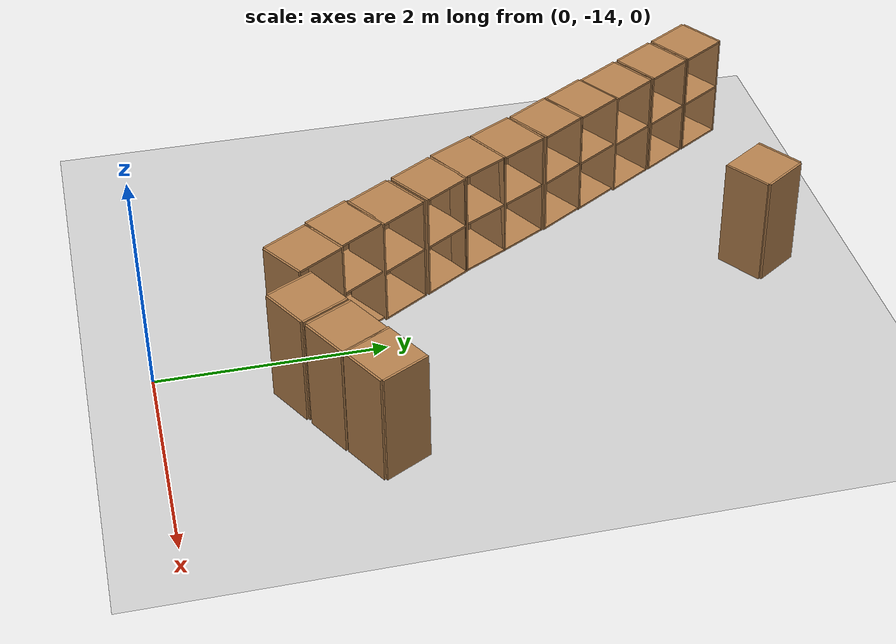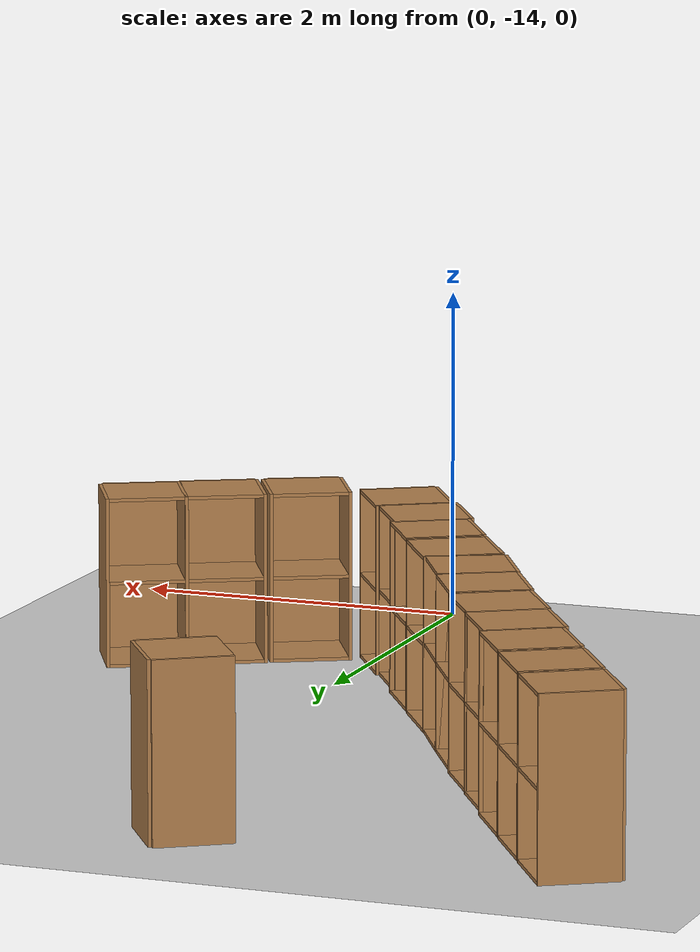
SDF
<sdf version="1.6">
 <world name="default">
  <model name="ground_plane">
   <static>1</static>
   <link name="link">
    <collision name="collision">
     <geometry><plane><normal>0 0 1</normal><size>100 100</size></plane></geometry>
     <surface><friction><ode><mu>100</mu><mu2>50</mu2></ode></friction></surface>
    </collision>
    <visual name="visual">
     <cast_shadows>0</cast_shadows>
     <geometry><plane><normal>0 0 1</normal><size>100 100</size></plane></geometry>
     <material>
      <script><uri>file://media/materials/scripts/gazebo.material</uri><name>Gazebo/Grey</name></script>
     </material>
    </visual>
   </link>
  </model>
  <model name="cabinet">
   <static>1</static>
   <link name="cabinet_bottom_plate">
    <inertial>
     <pose>0 0 -1 0 -0 0</pose>
     <inertia><ixx>2.05</ixx><ixy>0</ixy><ixz>0</ixz><iyy>2.05</iyy><iyz>0</iyz><izz>2.05</izz></inertia>
     <mass>25</mass>
    </inertial>
    <collision name="cabinet_bottom_plate_geom">
     <pose>0 0 0.01 0 -0 0</pose>
     <geometry><box><size>0.45 0.45 0.02</size></box></geometry>
    </collision>
    <visual name="cabinet_bottom_plate_geom_visual">
     <pose>0 0 0.01 0 -0 0</pose>
     <geometry><box><size>0.45 0.45 0.02</size></box></geometry>
     <material>
      <script><uri>file://media/materials/scripts/gazebo.material</uri><name>Gazebo/Wood</name></script>
     </material>
    </visual>
    <collision name="cabinet_bottom_plate_geom_cabinet_back_plate">
     <pose>0.235 0 0.51 0 -0 0</pose>
     <geometry><box><size>0.02 0.45 1.02</size></box></geometry>
    </collision>
    <visual name="cabinet_bottom_plate_geom_cabinet_back_plate_visual">
     <pose>0.235 0 0.51 0 -0 0</pose>
     <geometry><box><size>0.02 0.45 1.02</size></box></geometry>
     <material>
      <script><uri>file://media/materials/scripts/gazebo.material</uri><name>Gazebo/Wood</name></script>
     </material>
    </visual>
    <collision name="cabinet_bottom_plate_geom_cabinet_left_plate">
     <pose>0 0.235 0.51 0 -0 0</pose>
     <geometry><box><size>0.45 0.02 1.02</size></box></geometry>
    </collision>
    <visual name="cabinet_bottom_plate_geom_cabinet_left_plate_visual">
     <pose>0 0.235 0.51 0 -0 0</pose>
     <geometry><box><size>0.45 0.02 1.02</size></box></geometry>
     <material>
      <script><uri>file://media/materials/scripts/gazebo.material</uri><name>Gazebo/Wood</name></script>
     </material>
    </visual>
    <collision name="cabinet_bottom_plate_geom_cabinet_middle_plate">
     <pose>0 0 0.51 0 -0 0</pose>
     <geometry><box><size>0.45 0.45 0.02</size></box></geometry>
    </collision>
    <visual name="cabinet_bottom_plate_geom_cabinet_middle_plate_visual">
     <pose>0 0 0.51 0 -0 0</pose>
     <geometry><box><size>0.45 0.45 0.02</size></box></geometry>
     <material>
      <script><uri>file://media/materials/scripts/gazebo.material</uri><name>Gazebo/Wood</name></script>
     </material>
    </visual>
    <collision name="cabinet_bottom_plate_geom_cabinet_right_plate">
     <pose>0 -0.235 0.51 0 -0 0</pose>
     <geometry><box><size>0.45 0.02 1.02</size></box></geometry>
    </collision>
    <visual name="cabinet_bottom_plate_geom_cabinet_right_plate_visual">
     <pose>0 -0.235 0.51 0 -0 0</pose>
     <geometry><box><size>0.45 0.02 1.02</size></box></geometry>
     <material>
      <script><uri>file://media/materials/scripts/gazebo.material</uri><name>Gazebo/Wood</name></script>
     </material>
    </visual>
    <collision name="cabinet_bottom_plate_geom_cabinet_top_plate">
     <pose>0 0 1.01 0 -0 0</pose>
     <geometry><box><size>0.45 0.45 0.02</size></box></geometry>
    </collision>
    <visual name="cabinet_bottom_plate_geom_cabinet_top_plate_visual">
     <pose>0 0 1.01 0 -0 0</pose>
     <geometry><box><size>0.45 0.45 0.02</size></box></geometry>
     <material>
      <script><uri>file://media/materials/scripts/gazebo.material</uri><name>Gazebo/Wood</name></script>
     </material>
    </visual>
   </link>
   <pose>-1.66751 -10.1828 0 0 0 -2.58006</pose>
  </model>
  <model name="cabinet_clone">
   <static>1</static>
   <link name="cabinet_bottom_plate">
    <inertial>
     <pose>0 0 -1 0 -0 0</pose>
     <inertia><ixx>2.05</ixx><ixy>0</ixy><ixz>0</ixz><iyy>2.05</iyy><iyz>0</iyz><izz>2.05</izz></inertia>
     <mass>25</mass>
    </inertial>
    <collision name="cabinet_bottom_plate_geom">
     <pose>0 0 0.01 0 -0 0</pose>
     <geometry><box><size>0.45 0.45 0.02</size></box></geometry>
    </collision>
    <visual name="cabinet_bottom_plate_geom_visual">
     <pose>0 0 0.01 0 -0 0</pose>
     <geometry><box><size>0.45 0.45 0.02</size></box></geometry>
     <material>
      <script><uri>file://media/materials/scripts/gazebo.material</uri><name>Gazebo/Wood</name></script>
     </material>
    </visual>
    <collision name="cabinet_bottom_plate_geom_cabinet_back_plate">
     <pose>0.235 0 0.51 0 -0 0</pose>
     <geometry><box><size>0.02 0.45 1.02</size></box></geometry>
    </collision>
    <visual name="cabinet_bottom_plate_geom_cabinet_back_plate_visual">
     <pose>0.235 0 0.51 0 -0 0</pose>
     <geometry><box><size>0.02 0.45 1.02</size></box></geometry>
     <material>
      <script><uri>file://media/materials/scripts/gazebo.material</uri><name>Gazebo/Wood</name></script>
     </material>
    </visual>
    <collision name="cabinet_bottom_plate_geom_cabinet_left_plate">
     <pose>0 0.235 0.51 0 -0 0</pose>
     <geometry><box><size>0.45 0.02 1.02</size></box></geometry>
    </collision>
    <visual name="cabinet_bottom_plate_geom_cabinet_left_plate_visual">
     <pose>0 0.235 0.51 0 -0 0</pose>
     <geometry><box><size>0.45 0.02 1.02</size></box></geometry>
     <material>
      <script><uri>file://media/materials/scripts/gazebo.material</uri><name>Gazebo/Wood</name></script>
     </material>
    </visual>
    <collision name="cabinet_bottom_plate_geom_cabinet_middle_plate">
     <pose>0 0 0.51 0 -0 0</pose>
     <geometry><box><size>0.45 0.45 0.02</size></box></geometry>
    </collision>
    <visual name="cabinet_bottom_plate_geom_cabinet_middle_plate_visual">
     <pose>0 0 0.51 0 -0 0</pose>
     <geometry><box><size>0.45 0.45 0.02</size></box></geometry>
     <material>
      <script><uri>file://media/materials/scripts/gazebo.material</uri><name>Gazebo/Wood</name></script>
     </material>
    </visual>
    <collision name="cabinet_bottom_plate_geom_cabinet_right_plate">
     <pose>0 -0.235 0.51 0 -0 0</pose>
     <geometry><box><size>0.45 0.02 1.02</size></box></geometry>
    </collision>
    <visual name="cabinet_bottom_plate_geom_cabinet_right_plate_visual">
     <pose>0 -0.235 0.51 0 -0 0</pose>
     <geometry><box><size>0.45 0.02 1.02</size></box></geometry>
     <material>
      <script><uri>file://media/materials/scripts/gazebo.material</uri><name>Gazebo/Wood</name></script>
     </material>
    </visual>
    <collision name="cabinet_bottom_plate_geom_cabinet_top_plate">
     <pose>0 0 1.01 0 -0 0</pose>
     <geometry><box><size>0.45 0.45 0.02</size></box></geometry>
    </collision>
    <visual name="cabinet_bottom_plate_geom_cabinet_top_plate_visual">
     <pose>0 0 1.01 0 -0 0</pose>
     <geometry><box><size>0.45 0.45 0.02</size></box></geometry>
     <material>
      <script><uri>file://media/materials/scripts/gazebo.material</uri><name>Gazebo/Wood</name></script>
     </material>
    </visual>
   </link>
   <pose>-1.42561 -10.6083 0 0 0 -2.6231</pose>
  </model>
  <model name="cabinet_clone_0">
   <static>1</static>
   <link name="cabinet_bottom_plate">
    <inertial>
     <pose>0 0 -1 0 -0 0</pose>
     <inertia><ixx>2.05</ixx><ixy>0</ixy><ixz>0</ixz><iyy>2.05</iyy><iyz>0</iyz><izz>2.05</izz></inertia>
     <mass>25</mass>
    </inertial>
    <collision name="cabinet_bottom_plate_geom">
     <pose>0 0 0.01 0 -0 0</pose>
     <geometry><box><size>0.45 0.45 0.02</size></box></geometry>
    </collision>
    <visual name="cabinet_bottom_plate_geom_visual">
     <pose>0 0 0.01 0 -0 0</pose>
     <geometry><box><size>0.45 0.45 0.02</size></box></geometry>
     <material>
      <script><uri>file://media/materials/scripts/gazebo.material</uri><name>Gazebo/Wood</name></script>
     </material>
    </visual>
    <collision name="cabinet_bottom_plate_geom_cabinet_back_plate">
     <pose>0.235 0 0.51 0 -0 0</pose>
     <geometry><box><size>0.02 0.45 1.02</size></box></geometry>
    </collision>
    <visual name="cabinet_bottom_plate_geom_cabinet_back_plate_visual">
     <pose>0.235 0 0.51 0 -0 0</pose>
     <geometry><box><size>0.02 0.45 1.02</size></box></geometry>
     <material>
      <script><uri>file://media/materials/scripts/gazebo.material</uri><name>Gazebo/Wood</name></script>
     </material>
    </visual>
    <collision name="cabinet_bottom_plate_geom_cabinet_left_plate">
     <pose>0 0.235 0.51 0 -0 0</pose>
     <geometry><box><size>0.45 0.02 1.02</size></box></geometry>
    </collision>
    <visual name="cabinet_bottom_plate_geom_cabinet_left_plate_visual">
     <pose>0 0.235 0.51 0 -0 0</pose>
     <geometry><box><size>0.45 0.02 1.02</size></box></geometry>
     <material>
      <script><uri>file://media/materials/scripts/gazebo.material</uri><name>Gazebo/Wood</name></script>
     </material>
    </visual>
    <collision name="cabinet_bottom_plate_geom_cabinet_middle_plate">
     <pose>0 0 0.51 0 -0 0</pose>
     <geometry><box><size>0.45 0.45 0.02</size></box></geometry>
    </collision>
    <visual name="cabinet_bottom_plate_geom_cabinet_middle_plate_visual">
     <pose>0 0 0.51 0 -0 0</pose>
     <geometry><box><size>0.45 0.45 0.02</size></box></geometry>
     <material>
      <script><uri>file://media/materials/scripts/gazebo.material</uri><name>Gazebo/Wood</name></script>
     </material>
    </visual>
    <collision name="cabinet_bottom_plate_geom_cabinet_right_plate">
     <pose>0 -0.235 0.51 0 -0 0</pose>
     <geometry><box><size>0.45 0.02 1.02</size></box></geometry>
    </collision>
    <visual name="cabinet_bottom_plate_geom_cabinet_right_plate_visual">
     <pose>0 -0.235 0.51 0 -0 0</pose>
     <geometry><box><size>0.45 0.02 1.02</size></box></geometry>
     <material>
      <script><uri>file://media/materials/scripts/gazebo.material</uri><name>Gazebo/Wood</name></script>
     </material>
    </visual>
    <collision name="cabinet_bottom_plate_geom_cabinet_top_plate">
     <pose>0 0 1.01 0 -0 0</pose>
     <geometry><box><size>0.45 0.45 0.02</size></box></geometry>
    </collision>
    <visual name="cabinet_bottom_plate_geom_cabinet_top_plate_visual">
     <pose>0 0 1.01 0 -0 0</pose>
     <geometry><box><size>0.45 0.45 0.02</size></box></geometry>
     <material>
      <script><uri>file://media/materials/scripts/gazebo.material</uri><name>Gazebo/Wood</name></script>
     </material>
    </visual>
   </link>
   <pose>-1.19565 -11.0146 -0.001087 -0.001024 0.009907 -2.63814</pose>
  </model>
  <model name="cabinet_clone_1">
   <static>1</static>
   <link name="cabinet_bottom_plate">
    <inertial>
     <pose>0 0 -1 0 -0 0</pose>
     <inertia><ixx>2.05</ixx><ixy>0</ixy><ixz>0</ixz><iyy>2.05</iyy><iyz>0</iyz><izz>2.05</izz></inertia>
     <mass>25</mass>
    </inertial>
    <collision name="cabinet_bottom_plate_geom">
     <pose>0 0 0.01 0 -0 0</pose>
     <geometry><box><size>0.45 0.45 0.02</size></box></geometry>
    </collision>
    <visual name="cabinet_bottom_plate_geom_visual">
     <pose>0 0 0.01 0 -0 0</pose>
     <geometry><box><size>0.45 0.45 0.02</size></box></geometry>
     <material>
      <script><uri>file://media/materials/scripts/gazebo.material</uri><name>Gazebo/Wood</name></script>
     </material>
    </visual>
    <collision name="cabinet_bottom_plate_geom_cabinet_back_plate">
     <pose>0.235 0 0.51 0 -0 0</pose>
     <geometry><box><size>0.02 0.45 1.02</size></box></geometry>
    </collision>
    <visual name="cabinet_bottom_plate_geom_cabinet_back_plate_visual">
     <pose>0.235 0 0.51 0 -0 0</pose>
     <geometry><box><size>0.02 0.45 1.02</size></box></geometry>
     <material>
      <script><uri>file://media/materials/scripts/gazebo.material</uri><name>Gazebo/Wood</name></script>
     </material>
    </visual>
    <collision name="cabinet_bottom_plate_geom_cabinet_left_plate">
     <pose>0 0.235 0.51 0 -0 0</pose>
     <geometry><box><size>0.45 0.02 1.02</size></box></geometry>
    </collision>
    <visual name="cabinet_bottom_plate_geom_cabinet_left_plate_visual">
     <pose>0 0.235 0.51 0 -0 0</pose>
     <geometry><box><size>0.45 0.02 1.02</size></box></geometry>
     <material>
      <script><uri>file://media/materials/scripts/gazebo.material</uri><name>Gazebo/Wood</name></script>
     </material>
    </visual>
    <collision name="cabinet_bottom_plate_geom_cabinet_middle_plate">
     <pose>0 0 0.51 0 -0 0</pose>
     <geometry><box><size>0.45 0.45 0.02</size></box></geometry>
    </collision>
    <visual name="cabinet_bottom_plate_geom_cabinet_middle_plate_visual">
     <pose>0 0 0.51 0 -0 0</pose>
     <geometry><box><size>0.45 0.45 0.02</size></box></geometry>
     <material>
      <script><uri>file://media/materials/scripts/gazebo.material</uri><name>Gazebo/Wood</name></script>
     </material>
    </visual>
    <collision name="cabinet_bottom_plate_geom_cabinet_right_plate">
     <pose>0 -0.235 0.51 0 -0 0</pose>
     <geometry><box><size>0.45 0.02 1.02</size></box></geometry>
    </collision>
    <visual name="cabinet_bottom_plate_geom_cabinet_right_plate_visual">
     <pose>0 -0.235 0.51 0 -0 0</pose>
     <geometry><box><size>0.45 0.02 1.02</size></box></geometry>
     <material>
      <script><uri>file://media/materials/scripts/gazebo.material</uri><name>Gazebo/Wood</name></script>
     </material>
    </visual>
    <collision name="cabinet_bottom_plate_geom_cabinet_top_plate">
     <pose>0 0 1.01 0 -0 0</pose>
     <geometry><box><size>0.45 0.45 0.02</size></box></geometry>
    </collision>
    <visual name="cabinet_bottom_plate_geom_cabinet_top_plate_visual">
     <pose>0 0 1.01 0 -0 0</pose>
     <geometry><box><size>0.45 0.45 0.02</size></box></geometry>
     <material>
      <script><uri>file://media/materials/scripts/gazebo.material</uri><name>Gazebo/Wood</name></script>
     </material>
    </visual>
   </link>
   <pose>-1.90415 -9.79167 0 0 0 -2.58006</pose>
  </model>
  <model name="cabinet_clone_2">
   <static>1</static>
   <link name="cabinet_bottom_plate">
    <inertial>
     <pose>0 0 -1 0 -0 0</pose>
     <inertia><ixx>2.05</ixx><ixy>0</ixy><ixz>0</ixz><iyy>2.05</iyy><iyz>0</iyz><izz>2.05</izz></inertia>
     <mass>25</mass>
    </inertial>
    <collision name="cabinet_bottom_plate_geom">
     <pose>0 0 0.01 0 -0 0</pose>
     <geometry><box><size>0.45 0.45 0.02</size></box></geometry>
    </collision>
    <visual name="cabinet_bottom_plate_geom_visual">
     <pose>0 0 0.01 0 -0 0</pose>
     <geometry><box><size>0.45 0.45 0.02</size></box></geometry>
     <material>
      <script><uri>file://media/materials/scripts/gazebo.material</uri><name>Gazebo/Wood</name></script>
     </material>
    </visual>
    <collision name="cabinet_bottom_plate_geom_cabinet_back_plate">
     <pose>0.235 0 0.51 0 -0 0</pose>
     <geometry><box><size>0.02 0.45 1.02</size></box></geometry>
    </collision>
    <visual name="cabinet_bottom_plate_geom_cabinet_back_plate_visual">
     <pose>0.235 0 0.51 0 -0 0</pose>
     <geometry><box><size>0.02 0.45 1.02</size></box></geometry>
     <material>
      <script><uri>file://media/materials/scripts/gazebo.material</uri><name>Gazebo/Wood</name></script>
     </material>
    </visual>
    <collision name="cabinet_bottom_plate_geom_cabinet_left_plate">
     <pose>0 0.235 0.51 0 -0 0</pose>
     <geometry><box><size>0.45 0.02 1.02</size></box></geometry>
    </collision>
    <visual name="cabinet_bottom_plate_geom_cabinet_left_plate_visual">
     <pose>0 0.235 0.51 0 -0 0</pose>
     <geometry><box><size>0.45 0.02 1.02</size></box></geometry>
     <material>
      <script><uri>file://media/materials/scripts/gazebo.material</uri><name>Gazebo/Wood</name></script>
     </material>
    </visual>
    <collision name="cabinet_bottom_plate_geom_cabinet_middle_plate">
     <pose>0 0 0.51 0 -0 0</pose>
     <geometry><box><size>0.45 0.45 0.02</size></box></geometry>
    </collision>
    <visual name="cabinet_bottom_plate_geom_cabinet_middle_plate_visual">
     <pose>0 0 0.51 0 -0 0</pose>
     <geometry><box><size>0.45 0.45 0.02</size></box></geometry>
     <material>
      <script><uri>file://media/materials/scripts/gazebo.material</uri><name>Gazebo/Wood</name></script>
     </material>
    </visual>
    <collision name="cabinet_bottom_plate_geom_cabinet_right_plate">
     <pose>0 -0.235 0.51 0 -0 0</pose>
     <geometry><box><size>0.45 0.02 1.02</size></box></geometry>
    </collision>
    <visual name="cabinet_bottom_plate_geom_cabinet_right_plate_visual">
     <pose>0 -0.235 0.51 0 -0 0</pose>
     <geometry><box><size>0.45 0.02 1.02</size></box></geometry>
     <material>
      <script><uri>file://media/materials/scripts/gazebo.material</uri><name>Gazebo/Wood</name></script>
     </material>
    </visual>
    <collision name="cabinet_bottom_plate_geom_cabinet_top_plate">
     <pose>0 0 1.01 0 -0 0</pose>
     <geometry><box><size>0.45 0.45 0.02</size></box></geometry>
    </collision>
    <visual name="cabinet_bottom_plate_geom_cabinet_top_plate_visual">
     <pose>0 0 1.01 0 -0 0</pose>
     <geometry><box><size>0.45 0.45 0.02</size></box></geometry>
     <material>
      <script><uri>file://media/materials/scripts/gazebo.material</uri><name>Gazebo/Wood</name></script>
     </material>
    </visual>
   </link>
   <pose>-2.13471 -9.38423 0 0 0 -2.58006</pose>
  </model>
  <model name="cabinet_clone_3">
   <static>1</static>
   <link name="cabinet_bottom_plate">
    <inertial>
     <pose>0 0 -1 0 -0 0</pose>
     <inertia><ixx>2.05</ixx><ixy>0</ixy><ixz>0</ixz><iyy>2.05</iyy><iyz>0</iyz><izz>2.05</izz></inertia>
     <mass>25</mass>
    </inertial>
    <collision name="cabinet_bottom_plate_geom">
     <pose>0 0 0.01 0 -0 0</pose>
     <geometry><box><size>0.45 0.45 0.02</size></box></geometry>
    </collision>
    <visual name="cabinet_bottom_plate_geom_visual">
     <pose>0 0 0.01 0 -0 0</pose>
     <geometry><box><size>0.45 0.45 0.02</size></box></geometry>
     <material>
      <script><uri>file://media/materials/scripts/gazebo.material</uri><name>Gazebo/Wood</name></script>
     </material>
    </visual>
    <collision name="cabinet_bottom_plate_geom_cabinet_back_plate">
     <pose>0.235 0 0.51 0 -0 0</pose>
     <geometry><box><size>0.02 0.45 1.02</size></box></geometry>
    </collision>
    <visual name="cabinet_bottom_plate_geom_cabinet_back_plate_visual">
     <pose>0.235 0 0.51 0 -0 0</pose>
     <geometry><box><size>0.02 0.45 1.02</size></box></geometry>
     <material>
      <script><uri>file://media/materials/scripts/gazebo.material</uri><name>Gazebo/Wood</name></script>
     </material>
    </visual>
    <collision name="cabinet_bottom_plate_geom_cabinet_left_plate">
     <pose>0 0.235 0.51 0 -0 0</pose>
     <geometry><box><size>0.45 0.02 1.02</size></box></geometry>
    </collision>
    <visual name="cabinet_bottom_plate_geom_cabinet_left_plate_visual">
     <pose>0 0.235 0.51 0 -0 0</pose>
     <geometry><box><size>0.45 0.02 1.02</size></box></geometry>
     <material>
      <script><uri>file://media/materials/scripts/gazebo.material</uri><name>Gazebo/Wood</name></script>
     </material>
    </visual>
    <collision name="cabinet_bottom_plate_geom_cabinet_middle_plate">
     <pose>0 0 0.51 0 -0 0</pose>
     <geometry><box><size>0.45 0.45 0.02</size></box></geometry>
    </collision>
    <visual name="cabinet_bottom_plate_geom_cabinet_middle_plate_visual">
     <pose>0 0 0.51 0 -0 0</pose>
     <geometry><box><size>0.45 0.45 0.02</size></box></geometry>
     <material>
      <script><uri>file://media/materials/scripts/gazebo.material</uri><name>Gazebo/Wood</name></script>
     </material>
    </visual>
    <collision name="cabinet_bottom_plate_geom_cabinet_right_plate">
     <pose>0 -0.235 0.51 0 -0 0</pose>
     <geometry><box><size>0.45 0.02 1.02</size></box></geometry>
    </collision>
    <visual name="cabinet_bottom_plate_geom_cabinet_right_plate_visual">
     <pose>0 -0.235 0.51 0 -0 0</pose>
     <geometry><box><size>0.45 0.02 1.02</size></box></geometry>
     <material>
      <script><uri>file://media/materials/scripts/gazebo.material</uri><name>Gazebo/Wood</name></script>
     </material>
    </visual>
    <collision name="cabinet_bottom_plate_geom_cabinet_top_plate">
     <pose>0 0 1.01 0 -0 0</pose>
     <geometry><box><size>0.45 0.45 0.02</size></box></geometry>
    </collision>
    <visual name="cabinet_bottom_plate_geom_cabinet_top_plate_visual">
     <pose>0 0 1.01 0 -0 0</pose>
     <geometry><box><size>0.45 0.45 0.02</size></box></geometry>
     <material>
      <script><uri>file://media/materials/scripts/gazebo.material</uri><name>Gazebo/Wood</name></script>
     </material>
    </visual>
   </link>
   <pose>-2.39672 -8.95958 0 0 0 -2.58006</pose>
  </model>
  <model name="cabinet_clone_4">
   <static>1</static>
   <link name="cabinet_bottom_plate">
    <inertial>
     <pose>0 0 -1 0 -0 0</pose>
     <inertia><ixx>2.05</ixx><ixy>0</ixy><ixz>0</ixz><iyy>2.05</iyy><iyz>0</iyz><izz>2.05</izz></inertia>
     <mass>25</mass>
    </inertial>
    <collision name="cabinet_bottom_plate_geom">
     <pose>0 0 0.01 0 -0 0</pose>
     <geometry><box><size>0.45 0.45 0.02</size></box></geometry>
    </collision>
    <visual name="cabinet_bottom_plate_geom_visual">
     <pose>0 0 0.01 0 -0 0</pose>
     <geometry><box><size>0.45 0.45 0.02</size></box></geometry>
     <material>
      <script><uri>file://media/materials/scripts/gazebo.material</uri><name>Gazebo/Wood</name></script>
     </material>
    </visual>
    <collision name="cabinet_bottom_plate_geom_cabinet_back_plate">
     <pose>0.235 0 0.51 0 -0 0</pose>
     <geometry><box><size>0.02 0.45 1.02</size></box></geometry>
    </collision>
    <visual name="cabinet_bottom_plate_geom_cabinet_back_plate_visual">
     <pose>0.235 0 0.51 0 -0 0</pose>
     <geometry><box><size>0.02 0.45 1.02</size></box></geometry>
     <material>
      <script><uri>file://media/materials/scripts/gazebo.material</uri><name>Gazebo/Wood</name></script>
     </material>
    </visual>
    <collision name="cabinet_bottom_plate_geom_cabinet_left_plate">
     <pose>0 0.235 0.51 0 -0 0</pose>
     <geometry><box><size>0.45 0.02 1.02</size></box></geometry>
    </collision>
    <visual name="cabinet_bottom_plate_geom_cabinet_left_plate_visual">
     <pose>0 0.235 0.51 0 -0 0</pose>
     <geometry><box><size>0.45 0.02 1.02</size></box></geometry>
     <material>
      <script><uri>file://media/materials/scripts/gazebo.material</uri><name>Gazebo/Wood</name></script>
     </material>
    </visual>
    <collision name="cabinet_bottom_plate_geom_cabinet_middle_plate">
     <pose>0 0 0.51 0 -0 0</pose>
     <geometry><box><size>0.45 0.45 0.02</size></box></geometry>
    </collision>
    <visual name="cabinet_bottom_plate_geom_cabinet_middle_plate_visual">
     <pose>0 0 0.51 0 -0 0</pose>
     <geometry><box><size>0.45 0.45 0.02</size></box></geometry>
     <material>
      <script><uri>file://media/materials/scripts/gazebo.material</uri><name>Gazebo/Wood</name></script>
     </material>
    </visual>
    <collision name="cabinet_bottom_plate_geom_cabinet_right_plate">
     <pose>0 -0.235 0.51 0 -0 0</pose>
     <geometry><box><size>0.45 0.02 1.02</size></box></geometry>
    </collision>
    <visual name="cabinet_bottom_plate_geom_cabinet_right_plate_visual">
     <pose>0 -0.235 0.51 0 -0 0</pose>
     <geometry><box><size>0.45 0.02 1.02</size></box></geometry>
     <material>
      <script><uri>file://media/materials/scripts/gazebo.material</uri><name>Gazebo/Wood</name></script>
     </material>
    </visual>
    <collision name="cabinet_bottom_plate_geom_cabinet_top_plate">
     <pose>0 0 1.01 0 -0 0</pose>
     <geometry><box><size>0.45 0.45 0.02</size></box></geometry>
    </collision>
    <visual name="cabinet_bottom_plate_geom_cabinet_top_plate_visual">
     <pose>0 0 1.01 0 -0 0</pose>
     <geometry><box><size>0.45 0.45 0.02</size></box></geometry>
     <material>
      <script><uri>file://media/materials/scripts/gazebo.material</uri><name>Gazebo/Wood</name></script>
     </material>
    </visual>
   </link>
   <pose>-2.65784 -8.53839 0 0 0 -2.58006</pose>
  </model>
  <model name="cabinet_clone_6">
   <static>1</static>
   <link name="cabinet_bottom_plate">
    <inertial>
     <pose>0 0 -1 0 -0 0</pose>
     <inertia><ixx>2.05</ixx><ixy>0</ixy><ixz>0</ixz><iyy>2.05</iyy><iyz>0</iyz><izz>2.05</izz></inertia>
     <mass>25</mass>
    </inertial>
    <collision name="cabinet_bottom_plate_geom">
     <pose>0 0 0.01 0 -0 0</pose>
     <geometry><box><size>0.45 0.45 0.02</size></box></geometry>
    </collision>
    <visual name="cabinet_bottom_plate_geom_visual">
     <pose>0 0 0.01 0 -0 0</pose>
     <geometry><box><size>0.45 0.45 0.02</size></box></geometry>
     <material>
      <script><uri>file://media/materials/scripts/gazebo.material</uri><name>Gazebo/Wood</name></script>
     </material>
    </visual>
    <collision name="cabinet_bottom_plate_geom_cabinet_back_plate">
     <pose>0.235 0 0.51 0 -0 0</pose>
     <geometry><box><size>0.02 0.45 1.02</size></box></geometry>
    </collision>
    <visual name="cabinet_bottom_plate_geom_cabinet_back_plate_visual">
     <pose>0.235 0 0.51 0 -0 0</pose>
     <geometry><box><size>0.02 0.45 1.02</size></box></geometry>
     <material>
      <script><uri>file://media/materials/scripts/gazebo.material</uri><name>Gazebo/Wood</name></script>
     </material>
    </visual>
    <collision name="cabinet_bottom_plate_geom_cabinet_left_plate">
     <pose>0 0.235 0.51 0 -0 0</pose>
     <geometry><box><size>0.45 0.02 1.02</size></box></geometry>
    </collision>
    <visual name="cabinet_bottom_plate_geom_cabinet_left_plate_visual">
     <pose>0 0.235 0.51 0 -0 0</pose>
     <geometry><box><size>0.45 0.02 1.02</size></box></geometry>
     <material>
      <script><uri>file://media/materials/scripts/gazebo.material</uri><name>Gazebo/Wood</name></script>
     </material>
    </visual>
    <collision name="cabinet_bottom_plate_geom_cabinet_middle_plate">
     <pose>0 0 0.51 0 -0 0</pose>
     <geometry><box><size>0.45 0.45 0.02</size></box></geometry>
    </collision>
    <visual name="cabinet_bottom_plate_geom_cabinet_middle_plate_visual">
     <pose>0 0 0.51 0 -0 0</pose>
     <geometry><box><size>0.45 0.45 0.02</size></box></geometry>
     <material>
      <script><uri>file://media/materials/scripts/gazebo.material</uri><name>Gazebo/Wood</name></script>
     </material>
    </visual>
    <collision name="cabinet_bottom_plate_geom_cabinet_right_plate">
     <pose>0 -0.235 0.51 0 -0 0</pose>
     <geometry><box><size>0.45 0.02 1.02</size></box></geometry>
    </collision>
    <visual name="cabinet_bottom_plate_geom_cabinet_right_plate_visual">
     <pose>0 -0.235 0.51 0 -0 0</pose>
     <geometry><box><size>0.45 0.02 1.02</size></box></geometry>
     <material>
      <script><uri>file://media/materials/scripts/gazebo.material</uri><name>Gazebo/Wood</name></script>
     </material>
    </visual>
    <collision name="cabinet_bottom_plate_geom_cabinet_top_plate">
     <pose>0 0 1.01 0 -0 0</pose>
     <geometry><box><size>0.45 0.45 0.02</size></box></geometry>
    </collision>
    <visual name="cabinet_bottom_plate_geom_cabinet_top_plate_visual">
     <pose>0 0 1.01 0 -0 0</pose>
     <geometry><box><size>0.45 0.45 0.02</size></box></geometry>
     <material>
      <script><uri>file://media/materials/scripts/gazebo.material</uri><name>Gazebo/Wood</name></script>
     </material>
    </visual>
   </link>
   <pose>-0.954291 -11.42 0 0 0 -2.58006</pose>
  </model>
  <model name="cabinet_clone_7">
   <static>1</static>
   <link name="cabinet_bottom_plate">
    <inertial>
     <pose>0 0 -1 0 -0 0</pose>
     <inertia><ixx>2.05</ixx><ixy>0</ixy><ixz>0</ixz><iyy>2.05</iyy><iyz>0</iyz><izz>2.05</izz></inertia>
     <mass>25</mass>
    </inertial>
    <collision name="cabinet_bottom_plate_geom">
     <pose>0 0 0.01 0 -0 0</pose>
     <geometry><box><size>0.45 0.45 0.02</size></box></geometry>
    </collision>
    <visual name="cabinet_bottom_plate_geom_visual">
     <pose>0 0 0.01 0 -0 0</pose>
     <geometry><box><size>0.45 0.45 0.02</size></box></geometry>
     <material>
      <script><uri>file://media/materials/scripts/gazebo.material</uri><name>Gazebo/Wood</name></script>
     </material>
    </visual>
    <collision name="cabinet_bottom_plate_geom_cabinet_back_plate">
     <pose>0.235 0 0.51 0 -0 0</pose>
     <geometry><box><size>0.02 0.45 1.02</size></box></geometry>
    </collision>
    <visual name="cabinet_bottom_plate_geom_cabinet_back_plate_visual">
     <pose>0.235 0 0.51 0 -0 0</pose>
     <geometry><box><size>0.02 0.45 1.02</size></box></geometry>
     <material>
      <script><uri>file://media/materials/scripts/gazebo.material</uri><name>Gazebo/Wood</name></script>
     </material>
    </visual>
    <collision name="cabinet_bottom_plate_geom_cabinet_left_plate">
     <pose>0 0.235 0.51 0 -0 0</pose>
     <geometry><box><size>0.45 0.02 1.02</size></box></geometry>
    </collision>
    <visual name="cabinet_bottom_plate_geom_cabinet_left_plate_visual">
     <pose>0 0.235 0.51 0 -0 0</pose>
     <geometry><box><size>0.45 0.02 1.02</size></box></geometry>
     <material>
      <script><uri>file://media/materials/scripts/gazebo.material</uri><name>Gazebo/Wood</name></script>
     </material>
    </visual>
    <collision name="cabinet_bottom_plate_geom_cabinet_middle_plate">
     <pose>0 0 0.51 0 -0 0</pose>
     <geometry><box><size>0.45 0.45 0.02</size></box></geometry>
    </collision>
    <visual name="cabinet_bottom_plate_geom_cabinet_middle_plate_visual">
     <pose>0 0 0.51 0 -0 0</pose>
     <geometry><box><size>0.45 0.45 0.02</size></box></geometry>
     <material>
      <script><uri>file://media/materials/scripts/gazebo.material</uri><name>Gazebo/Wood</name></script>
     </material>
    </visual>
    <collision name="cabinet_bottom_plate_geom_cabinet_right_plate">
     <pose>0 -0.235 0.51 0 -0 0</pose>
     <geometry><box><size>0.45 0.02 1.02</size></box></geometry>
    </collision>
    <visual name="cabinet_bottom_plate_geom_cabinet_right_plate_visual">
     <pose>0 -0.235 0.51 0 -0 0</pose>
     <geometry><box><size>0.45 0.02 1.02</size></box></geometry>
     <material>
      <script><uri>file://media/materials/scripts/gazebo.material</uri><name>Gazebo/Wood</name></script>
     </material>
    </visual>
    <collision name="cabinet_bottom_plate_geom_cabinet_top_plate">
     <pose>0 0 1.01 0 -0 0</pose>
     <geometry><box><size>0.45 0.45 0.02</size></box></geometry>
    </collision>
    <visual name="cabinet_bottom_plate_geom_cabinet_top_plate_visual">
     <pose>0 0 1.01 0 -0 0</pose>
     <geometry><box><size>0.45 0.45 0.02</size></box></geometry>
     <material>
      <script><uri>file://media/materials/scripts/gazebo.material</uri><name>Gazebo/Wood</name></script>
     </material>
    </visual>
   </link>
   <pose>-0.688254 -11.8539 0 0 0 -2.58006</pose>
  </model>
  <model name="cabinet_clone_8">
   <static>1</static>
   <link name="cabinet_bottom_plate">
    <inertial>
     <pose>0 0 -1 0 -0 0</pose>
     <inertia><ixx>2.05</ixx><ixy>0</ixy><ixz>0</ixz><iyy>2.05</iyy><iyz>0</iyz><izz>2.05</izz></inertia>
     <mass>25</mass>
    </inertial>
    <collision name="cabinet_bottom_plate_geom">
     <pose>0 0 0.01 0 -0 0</pose>
     <geometry><box><size>0.45 0.45 0.02</size></box></geometry>
    </collision>
    <visual name="cabinet_bottom_plate_geom_visual">
     <pose>0 0 0.01 0 -0 0</pose>
     <geometry><box><size>0.45 0.45 0.02</size></box></geometry>
     <material>
      <script><uri>file://media/materials/scripts/gazebo.material</uri><name>Gazebo/Wood</name></script>
     </material>
    </visual>
    <collision name="cabinet_bottom_plate_geom_cabinet_back_plate">
     <pose>0.235 0 0.51 0 -0 0</pose>
     <geometry><box><size>0.02 0.45 1.02</size></box></geometry>
    </collision>
    <visual name="cabinet_bottom_plate_geom_cabinet_back_plate_visual">
     <pose>0.235 0 0.51 0 -0 0</pose>
     <geometry><box><size>0.02 0.45 1.02</size></box></geometry>
     <material>
      <script><uri>file://media/materials/scripts/gazebo.material</uri><name>Gazebo/Wood</name></script>
     </material>
    </visual>
    <collision name="cabinet_bottom_plate_geom_cabinet_left_plate">
     <pose>0 0.235 0.51 0 -0 0</pose>
     <geometry><box><size>0.45 0.02 1.02</size></box></geometry>
    </collision>
    <visual name="cabinet_bottom_plate_geom_cabinet_left_plate_visual">
     <pose>0 0.235 0.51 0 -0 0</pose>
     <geometry><box><size>0.45 0.02 1.02</size></box></geometry>
     <material>
      <script><uri>file://media/materials/scripts/gazebo.material</uri><name>Gazebo/Wood</name></script>
     </material>
    </visual>
    <collision name="cabinet_bottom_plate_geom_cabinet_middle_plate">
     <pose>0 0 0.51 0 -0 0</pose>
     <geometry><box><size>0.45 0.45 0.02</size></box></geometry>
    </collision>
    <visual name="cabinet_bottom_plate_geom_cabinet_middle_plate_visual">
     <pose>0 0 0.51 0 -0 0</pose>
     <geometry><box><size>0.45 0.45 0.02</size></box></geometry>
     <material>
      <script><uri>file://media/materials/scripts/gazebo.material</uri><name>Gazebo/Wood</name></script>
     </material>
    </visual>
    <collision name="cabinet_bottom_plate_geom_cabinet_right_plate">
     <pose>0 -0.235 0.51 0 -0 0</pose>
     <geometry><box><size>0.45 0.02 1.02</size></box></geometry>
    </collision>
    <visual name="cabinet_bottom_plate_geom_cabinet_right_plate_visual">
     <pose>0 -0.235 0.51 0 -0 0</pose>
     <geometry><box><size>0.45 0.02 1.02</size></box></geometry>
     <material>
      <script><uri>file://media/materials/scripts/gazebo.material</uri><name>Gazebo/Wood</name></script>
     </material>
    </visual>
    <collision name="cabinet_bottom_plate_geom_cabinet_top_plate">
     <pose>0 0 1.01 0 -0 0</pose>
     <geometry><box><size>0.45 0.45 0.02</size></box></geometry>
    </collision>
    <visual name="cabinet_bottom_plate_geom_cabinet_top_plate_visual">
     <pose>0 0 1.01 0 -0 0</pose>
     <geometry><box><size>0.45 0.45 0.02</size></box></geometry>
     <material>
      <script><uri>file://media/materials/scripts/gazebo.material</uri><name>Gazebo/Wood</name></script>
     </material>
    </visual>
   </link>
   <pose>-0.467879 -12.2537 0 0 0 -2.58006</pose>
  </model>
  <model name="cabinet_clone_9">
   <static>1</static>
   <link name="cabinet_bottom_plate">
    <inertial>
     <pose>0 0 -1 0 -0 0</pose>
     <inertia><ixx>2.05</ixx><ixy>0</ixy><ixz>0</ixz><iyy>2.05</iyy><iyz>0</iyz><izz>2.05</izz></inertia>
     <mass>25</mass>
    </inertial>
    <collision name="cabinet_bottom_plate_geom">
     <pose>0 0 0.01 0 -0 0</pose>
     <geometry><box><size>0.45 0.45 0.02</size></box></geometry>
    </collision>
    <visual name="cabinet_bottom_plate_geom_visual">
     <pose>0 0 0.01 0 -0 0</pose>
     <geometry><box><size>0.45 0.45 0.02</size></box></geometry>
     <material>
      <script><uri>file://media/materials/scripts/gazebo.material</uri><name>Gazebo/Wood</name></script>
     </material>
    </visual>
    <collision name="cabinet_bottom_plate_geom_cabinet_back_plate">
     <pose>0.235 0 0.51 0 -0 0</pose>
     <geometry><box><size>0.02 0.45 1.02</size></box></geometry>
    </collision>
    <visual name="cabinet_bottom_plate_geom_cabinet_back_plate_visual">
     <pose>0.235 0 0.51 0 -0 0</pose>
     <geometry><box><size>0.02 0.45 1.02</size></box></geometry>
     <material>
      <script><uri>file://media/materials/scripts/gazebo.material</uri><name>Gazebo/Wood</name></script>
     </material>
    </visual>
    <collision name="cabinet_bottom_plate_geom_cabinet_left_plate">
     <pose>0 0.235 0.51 0 -0 0</pose>
     <geometry><box><size>0.45 0.02 1.02</size></box></geometry>
    </collision>
    <visual name="cabinet_bottom_plate_geom_cabinet_left_plate_visual">
     <pose>0 0.235 0.51 0 -0 0</pose>
     <geometry><box><size>0.45 0.02 1.02</size></box></geometry>
     <material>
      <script><uri>file://media/materials/scripts/gazebo.material</uri><name>Gazebo/Wood</name></script>
     </material>
    </visual>
    <collision name="cabinet_bottom_plate_geom_cabinet_middle_plate">
     <pose>0 0 0.51 0 -0 0</pose>
     <geometry><box><size>0.45 0.45 0.02</size></box></geometry>
    </collision>
    <visual name="cabinet_bottom_plate_geom_cabinet_middle_plate_visual">
     <pose>0 0 0.51 0 -0 0</pose>
     <geometry><box><size>0.45 0.45 0.02</size></box></geometry>
     <material>
      <script><uri>file://media/materials/scripts/gazebo.material</uri><name>Gazebo/Wood</name></script>
     </material>
    </visual>
    <collision name="cabinet_bottom_plate_geom_cabinet_right_plate">
     <pose>0 -0.235 0.51 0 -0 0</pose>
     <geometry><box><size>0.45 0.02 1.02</size></box></geometry>
    </collision>
    <visual name="cabinet_bottom_plate_geom_cabinet_right_plate_visual">
     <pose>0 -0.235 0.51 0 -0 0</pose>
     <geometry><box><size>0.45 0.02 1.02</size></box></geometry>
     <material>
      <script><uri>file://media/materials/scripts/gazebo.material</uri><name>Gazebo/Wood</name></script>
     </material>
    </visual>
    <collision name="cabinet_bottom_plate_geom_cabinet_top_plate">
     <pose>0 0 1.01 0 -0 0</pose>
     <geometry><box><size>0.45 0.45 0.02</size></box></geometry>
    </collision>
    <visual name="cabinet_bottom_plate_geom_cabinet_top_plate_visual">
     <pose>0 0 1.01 0 -0 0</pose>
     <geometry><box><size>0.45 0.45 0.02</size></box></geometry>
     <material>
      <script><uri>file://media/materials/scripts/gazebo.material</uri><name>Gazebo/Wood</name></script>
     </material>
    </visual>
   </link>
   <pose>-0.199444 -12.6448 0 0 0 -2.58006</pose>
  </model>
  <model name="cabinet_clone_10">
   <static>1</static>
   <link name="cabinet_bottom_plate">
    <inertial>
     <pose>0 0 -1 0 -0 0</pose>
     <inertia><ixx>2.05</ixx><ixy>0</ixy><ixz>0</ixz><iyy>2.05</iyy><iyz>0</iyz><izz>2.05</izz></inertia>
     <mass>25</mass>
    </inertial>
    <collision name="cabinet_bottom_plate_geom">
     <pose>0 0 0.01 0 -0 0</pose>
     <geometry><box><size>0.45 0.45 0.02</size></box></geometry>
    </collision>
    <visual name="cabinet_bottom_plate_geom_visual">
     <pose>0 0 0.01 0 -0 0</pose>
     <geometry><box><size>0.45 0.45 0.02</size></box></geometry>
     <material>
      <script><uri>file://media/materials/scripts/gazebo.material</uri><name>Gazebo/Wood</name></script>
     </material>
    </visual>
    <collision name="cabinet_bottom_plate_geom_cabinet_back_plate">
     <pose>0.235 0 0.51 0 -0 0</pose>
     <geometry><box><size>0.02 0.45 1.02</size></box></geometry>
    </collision>
    <visual name="cabinet_bottom_plate_geom_cabinet_back_plate_visual">
     <pose>0.235 0 0.51 0 -0 0</pose>
     <geometry><box><size>0.02 0.45 1.02</size></box></geometry>
     <material>
      <script><uri>file://media/materials/scripts/gazebo.material</uri><name>Gazebo/Wood</name></script>
     </material>
    </visual>
    <collision name="cabinet_bottom_plate_geom_cabinet_left_plate">
     <pose>0 0.235 0.51 0 -0 0</pose>
     <geometry><box><size>0.45 0.02 1.02</size></box></geometry>
    </collision>
    <visual name="cabinet_bottom_plate_geom_cabinet_left_plate_visual">
     <pose>0 0.235 0.51 0 -0 0</pose>
     <geometry><box><size>0.45 0.02 1.02</size></box></geometry>
     <material>
      <script><uri>file://media/materials/scripts/gazebo.material</uri><name>Gazebo/Wood</name></script>
     </material>
    </visual>
    <collision name="cabinet_bottom_plate_geom_cabinet_middle_plate">
     <pose>0 0 0.51 0 -0 0</pose>
     <geometry><box><size>0.45 0.45 0.02</size></box></geometry>
    </collision>
    <visual name="cabinet_bottom_plate_geom_cabinet_middle_plate_visual">
     <pose>0 0 0.51 0 -0 0</pose>
     <geometry><box><size>0.45 0.45 0.02</size></box></geometry>
     <material>
      <script><uri>file://media/materials/scripts/gazebo.material</uri><name>Gazebo/Wood</name></script>
     </material>
    </visual>
    <collision name="cabinet_bottom_plate_geom_cabinet_right_plate">
     <pose>0 -0.235 0.51 0 -0 0</pose>
     <geometry><box><size>0.45 0.02 1.02</size></box></geometry>
    </collision>
    <visual name="cabinet_bottom_plate_geom_cabinet_right_plate_visual">
     <pose>0 -0.235 0.51 0 -0 0</pose>
     <geometry><box><size>0.45 0.02 1.02</size></box></geometry>
     <material>
      <script><uri>file://media/materials/scripts/gazebo.material</uri><name>Gazebo/Wood</name></script>
     </material>
    </visual>
    <collision name="cabinet_bottom_plate_geom_cabinet_top_plate">
     <pose>0 0 1.01 0 -0 0</pose>
     <geometry><box><size>0.45 0.45 0.02</size></box></geometry>
    </collision>
    <visual name="cabinet_bottom_plate_geom_cabinet_top_plate_visual">
     <pose>0 0 1.01 0 -0 0</pose>
     <geometry><box><size>0.45 0.45 0.02</size></box></geometry>
     <material>
      <script><uri>file://media/materials/scripts/gazebo.material</uri><name>Gazebo/Wood</name></script>
     </material>
    </visual>
   </link>
   <pose>0.454644 -12.7154 0 0 0 -1.07227</pose>
  </model>
  <model name="cabinet_clone_10_clone">
   <static>1</static>
   <link name="cabinet_bottom_plate">
    <inertial>
     <pose>0 0 -1 0 -0 0</pose>
     <inertia><ixx>2.05</ixx><ixy>0</ixy><ixz>0</ixz><iyy>2.05</iyy><iyz>0</iyz><izz>2.05</izz></inertia>
     <mass>25</mass>
    </inertial>
    <collision name="cabinet_bottom_plate_geom">
     <pose>0 0 0.01 0 -0 0</pose>
     <geometry><box><size>0.45 0.45 0.02</size></box></geometry>
    </collision>
    <visual name="cabinet_bottom_plate_geom_visual">
     <pose>0 0 0.01 0 -0 0</pose>
     <geometry><box><size>0.45 0.45 0.02</size></box></geometry>
     <material>
      <script><uri>file://media/materials/scripts/gazebo.material</uri><name>Gazebo/Wood</name></script>
     </material>
    </visual>
    <collision name="cabinet_bottom_plate_geom_cabinet_back_plate">
     <pose>0.235 0 0.51 0 -0 0</pose>
     <geometry><box><size>0.02 0.45 1.02</size></box></geometry>
    </collision>
    <visual name="cabinet_bottom_plate_geom_cabinet_back_plate_visual">
     <pose>0.235 0 0.51 0 -0 0</pose>
     <geometry><box><size>0.02 0.45 1.02</size></box></geometry>
     <material>
      <script><uri>file://media/materials/scripts/gazebo.material</uri><name>Gazebo/Wood</name></script>
     </material>
    </visual>
    <collision name="cabinet_bottom_plate_geom_cabinet_left_plate">
     <pose>0 0.235 0.51 0 -0 0</pose>
     <geometry><box><size>0.45 0.02 1.02</size></box></geometry>
    </collision>
    <visual name="cabinet_bottom_plate_geom_cabinet_left_plate_visual">
     <pose>0 0.235 0.51 0 -0 0</pose>
     <geometry><box><size>0.45 0.02 1.02</size></box></geometry>
     <material>
      <script><uri>file://media/materials/scripts/gazebo.material</uri><name>Gazebo/Wood</name></script>
     </material>
    </visual>
    <collision name="cabinet_bottom_plate_geom_cabinet_middle_plate">
     <pose>0 0 0.51 0 -0 0</pose>
     <geometry><box><size>0.45 0.45 0.02</size></box></geometry>
    </collision>
    <visual name="cabinet_bottom_plate_geom_cabinet_middle_plate_visual">
     <pose>0 0 0.51 0 -0 0</pose>
     <geometry><box><size>0.45 0.45 0.02</size></box></geometry>
     <material>
      <script><uri>file://media/materials/scripts/gazebo.material</uri><name>Gazebo/Wood</name></script>
     </material>
    </visual>
    <collision name="cabinet_bottom_plate_geom_cabinet_right_plate">
     <pose>0 -0.235 0.51 0 -0 0</pose>
     <geometry><box><size>0.45 0.02 1.02</size></box></geometry>
    </collision>
    <visual name="cabinet_bottom_plate_geom_cabinet_right_plate_visual">
     <pose>0 -0.235 0.51 0 -0 0</pose>
     <geometry><box><size>0.45 0.02 1.02</size></box></geometry>
     <material>
      <script><uri>file://media/materials/scripts/gazebo.material</uri><name>Gazebo/Wood</name></script>
     </material>
    </visual>
    <collision name="cabinet_bottom_plate_geom_cabinet_top_plate">
     <pose>0 0 1.01 0 -0 0</pose>
     <geometry><box><size>0.45 0.45 0.02</size></box></geometry>
    </collision>
    <visual name="cabinet_bottom_plate_geom_cabinet_top_plate_visual">
     <pose>0 0 1.01 0 -0 0</pose>
     <geometry><box><size>0.45 0.45 0.02</size></box></geometry>
     <material>
      <script><uri>file://media/materials/scripts/gazebo.material</uri><name>Gazebo/Wood</name></script>
     </material>
    </visual>
   </link>
   <pose>0.896926 -12.4696 0 0 0 -1.07227</pose>
  </model>
  <model name="cabinet_clone_10_clone_0">
   <static>1</static>
   <link name="cabinet_bottom_plate">
    <inertial>
     <pose>0 0 -1 0 -0 0</pose>
     <inertia><ixx>2.05</ixx><ixy>0</ixy><ixz>0</ixz><iyy>2.05</iyy><iyz>0</iyz><izz>2.05</izz></inertia>
     <mass>25</mass>
    </inertial>
    <collision name="cabinet_bottom_plate_geom">
     <pose>0 0 0.01 0 -0 0</pose>
     <geometry><box><size>0.45 0.45 0.02</size></box></geometry>
    </collision>
    <visual name="cabinet_bottom_plate_geom_visual">
     <pose>0 0 0.01 0 -0 0</pose>
     <geometry><box><size>0.45 0.45 0.02</size></box></geometry>
     <material>
      <script><uri>file://media/materials/scripts/gazebo.material</uri><name>Gazebo/Wood</name></script>
     </material>
    </visual>
    <collision name="cabinet_bottom_plate_geom_cabinet_back_plate">
     <pose>0.235 0 0.51 0 -0 0</pose>
     <geometry><box><size>0.02 0.45 1.02</size></box></geometry>
    </collision>
    <visual name="cabinet_bottom_plate_geom_cabinet_back_plate_visual">
     <pose>0.235 0 0.51 0 -0 0</pose>
     <geometry><box><size>0.02 0.45 1.02</size></box></geometry>
     <material>
      <script><uri>file://media/materials/scripts/gazebo.material</uri><name>Gazebo/Wood</name></script>
     </material>
    </visual>
    <collision name="cabinet_bottom_plate_geom_cabinet_left_plate">
     <pose>0 0.235 0.51 0 -0 0</pose>
     <geometry><box><size>0.45 0.02 1.02</size></box></geometry>
    </collision>
    <visual name="cabinet_bottom_plate_geom_cabinet_left_plate_visual">
     <pose>0 0.235 0.51 0 -0 0</pose>
     <geometry><box><size>0.45 0.02 1.02</size></box></geometry>
     <material>
      <script><uri>file://media/materials/scripts/gazebo.material</uri><name>Gazebo/Wood</name></script>
     </material>
    </visual>
    <collision name="cabinet_bottom_plate_geom_cabinet_middle_plate">
     <pose>0 0 0.51 0 -0 0</pose>
     <geometry><box><size>0.45 0.45 0.02</size></box></geometry>
    </collision>
    <visual name="cabinet_bottom_plate_geom_cabinet_middle_plate_visual">
     <pose>0 0 0.51 0 -0 0</pose>
     <geometry><box><size>0.45 0.45 0.02</size></box></geometry>
     <material>
      <script><uri>file://media/materials/scripts/gazebo.material</uri><name>Gazebo/Wood</name></script>
     </material>
    </visual>
    <collision name="cabinet_bottom_plate_geom_cabinet_right_plate">
     <pose>0 -0.235 0.51 0 -0 0</pose>
     <geometry><box><size>0.45 0.02 1.02</size></box></geometry>
    </collision>
    <visual name="cabinet_bottom_plate_geom_cabinet_right_plate_visual">
     <pose>0 -0.235 0.51 0 -0 0</pose>
     <geometry><box><size>0.45 0.02 1.02</size></box></geometry>
     <material>
      <script><uri>file://media/materials/scripts/gazebo.material</uri><name>Gazebo/Wood</name></script>
     </material>
    </visual>
    <collision name="cabinet_bottom_plate_geom_cabinet_top_plate">
     <pose>0 0 1.01 0 -0 0</pose>
     <geometry><box><size>0.45 0.45 0.02</size></box></geometry>
    </collision>
    <visual name="cabinet_bottom_plate_geom_cabinet_top_plate_visual">
     <pose>0 0 1.01 0 -0 0</pose>
     <geometry><box><size>0.45 0.45 0.02</size></box></geometry>
     <material>
      <script><uri>file://media/materials/scripts/gazebo.material</uri><name>Gazebo/Wood</name></script>
     </material>
    </visual>
   </link>
   <pose>1.30281 -12.2368 0 0 0 -1.07227</pose>
  </model>
  <model name="cabinet_clone_10_clone_1_clone_0_clone">
   <static>1</static>
   <link name="cabinet_bottom_plate">
    <inertial>
     <pose>0 0 -1 0 -0 0</pose>
     <inertia><ixx>2.05</ixx><ixy>0</ixy><ixz>0</ixz><iyy>2.05</iyy><iyz>0</iyz><izz>2.05</izz></inertia>
     <mass>25</mass>
    </inertial>
    <collision name="cabinet_bottom_plate_geom">
     <pose>0 0 0.01 0 -0 0</pose>
     <geometry><box><size>0.45 0.45 0.02</size></box></geometry>
    </collision>
    <visual name="cabinet_bottom_plate_geom_visual">
     <pose>0 0 0.01 0 -0 0</pose>
     <geometry><box><size>0.45 0.45 0.02</size></box></geometry>
     <material>
      <script><uri>file://media/materials/scripts/gazebo.material</uri><name>Gazebo/Wood</name></script>
     </material>
    </visual>
    <collision name="cabinet_bottom_plate_geom_cabinet_back_plate">
     <pose>0.235 0 0.51 0 -0 0</pose>
     <geometry><box><size>0.02 0.45 1.02</size></box></geometry>
    </collision>
    <visual name="cabinet_bottom_plate_geom_cabinet_back_plate_visual">
     <pose>0.235 0 0.51 0 -0 0</pose>
     <geometry><box><size>0.02 0.45 1.02</size></box></geometry>
     <material>
      <script><uri>file://media/materials/scripts/gazebo.material</uri><name>Gazebo/Wood</name></script>
     </material>
    </visual>
    <collision name="cabinet_bottom_plate_geom_cabinet_left_plate">
     <pose>0 0.235 0.51 0 -0 0</pose>
     <geometry><box><size>0.45 0.02 1.02</size></box></geometry>
    </collision>
    <visual name="cabinet_bottom_plate_geom_cabinet_left_plate_visual">
     <pose>0 0.235 0.51 0 -0 0</pose>
     <geometry><box><size>0.45 0.02 1.02</size></box></geometry>
     <material>
      <script><uri>file://media/materials/scripts/gazebo.material</uri><name>Gazebo/Wood</name></script>
     </material>
    </visual>
    <collision name="cabinet_bottom_plate_geom_cabinet_middle_plate">
     <pose>0 0 0.51 0 -0 0</pose>
     <geometry><box><size>0.45 0.45 0.02</size></box></geometry>
    </collision>
    <visual name="cabinet_bottom_plate_geom_cabinet_middle_plate_visual">
     <pose>0 0 0.51 0 -0 0</pose>
     <geometry><box><size>0.45 0.45 0.02</size></box></geometry>
     <material>
      <script><uri>file://media/materials/scripts/gazebo.material</uri><name>Gazebo/Wood</name></script>
     </material>
    </visual>
    <collision name="cabinet_bottom_plate_geom_cabinet_right_plate">
     <pose>0 -0.235 0.51 0 -0 0</pose>
     <geometry><box><size>0.45 0.02 1.02</size></box></geometry>
    </collision>
    <visual name="cabinet_bottom_plate_geom_cabinet_right_plate_visual">
     <pose>0 -0.235 0.51 0 -0 0</pose>
     <geometry><box><size>0.45 0.02 1.02</size></box></geometry>
     <material>
      <script><uri>file://media/materials/scripts/gazebo.material</uri><name>Gazebo/Wood</name></script>
     </material>
    </visual>
    <collision name="cabinet_bottom_plate_geom_cabinet_top_plate">
     <pose>0 0 1.01 0 -0 0</pose>
     <geometry><box><size>0.45 0.45 0.02</size></box></geometry>
    </collision>
    <visual name="cabinet_bottom_plate_geom_cabinet_top_plate_visual">
     <pose>0 0 1.01 0 -0 0</pose>
     <geometry><box><size>0.45 0.45 0.02</size></box></geometry>
     <material>
      <script><uri>file://media/materials/scripts/gazebo.material</uri><name>Gazebo/Wood</name></script>
     </material>
    </visual>
   </link>
   <pose>-0.502363 -8.52061 0 0 -0 0.595664</pose>
  </model>
 </world>
</sdf>
